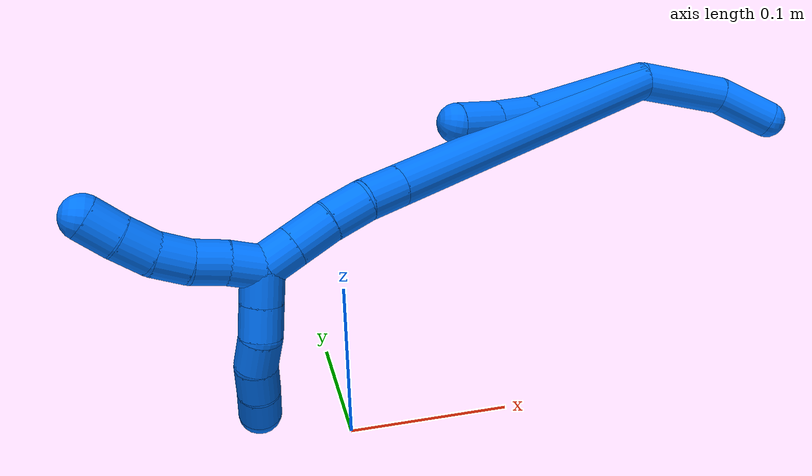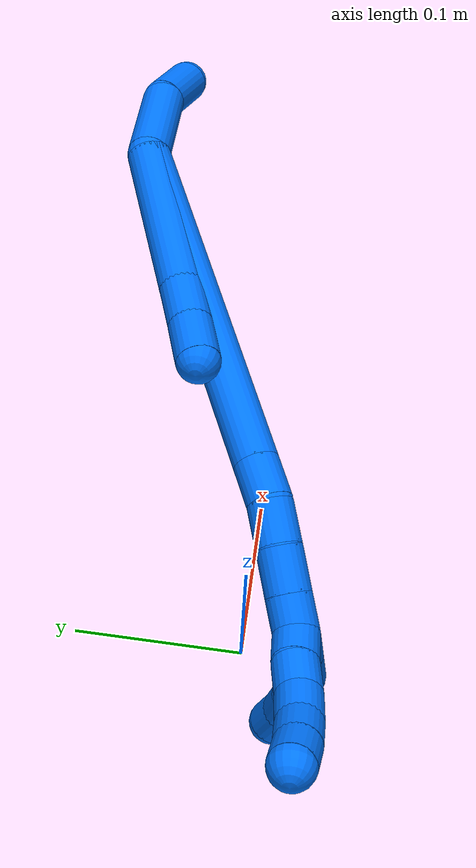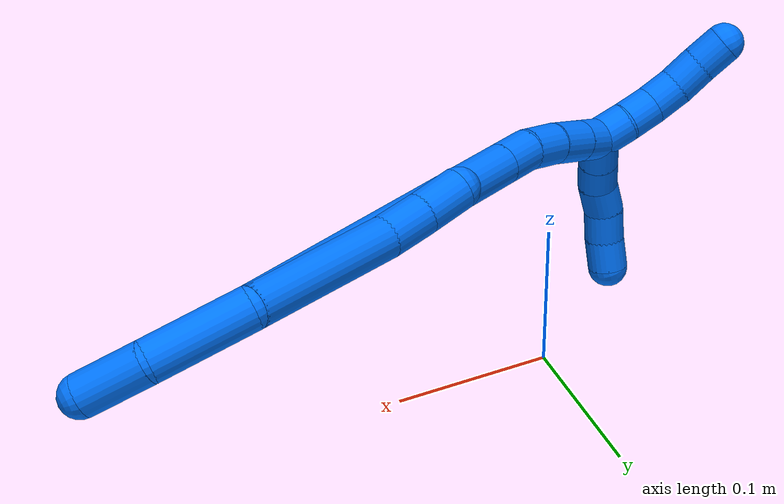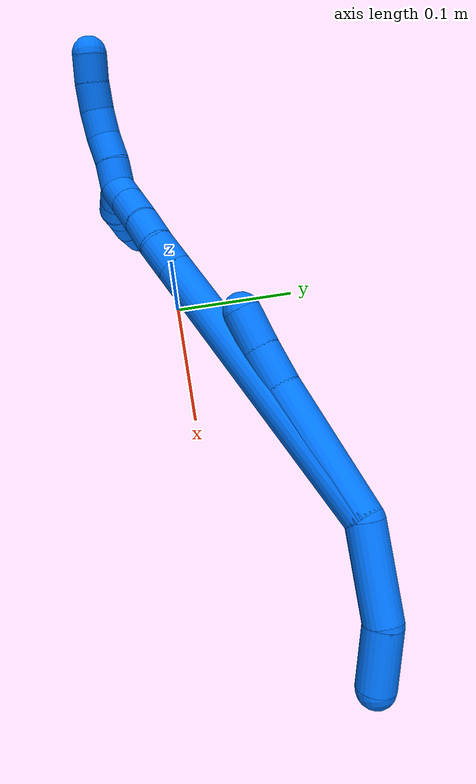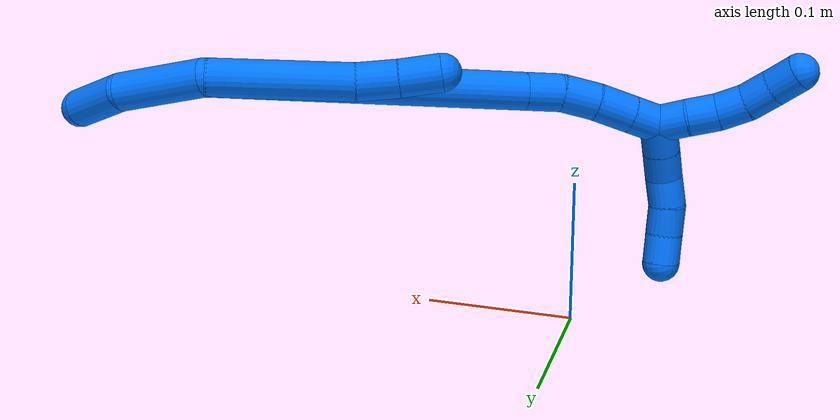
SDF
<sdf version="1.7">
 <world name="default">
  <model name="14">
   <static>0</static>
   <link name="14">
    <collision name="collision-cylinder-e_1_2_8">
     <pose>0.003915 -0.020545 -0.042519 2.69148 0.082711 0.357632</pose>
     <geometry><cylinder><radius>0.0125</radius><length>0.094769</length></cylinder></geometry>
     <surface>
      <friction><ode><mu>1.16</mu><mu2>1.16</mu2><slip1>0</slip1><slip2>0</slip2></ode></friction>
      <contact><ode><kp>1e+06</kp><kd>1</kd><max_vel>0</max_vel><min_depth>0.001</min_depth></ode></contact>
     </surface>
    </collision>
    <visual name="visual-cylinder-e_1_2_8">
     <pose>0.003915 -0.020545 -0.042519 2.69148 0.082711 0.357632</pose>
     <geometry><cylinder><radius>0.0125</radius><length>0.094769</length></cylinder></geometry>
     <material><ambient>0 0.462745 1 1</ambient></material>
    </visual>
    <collision name="collision-cylinder-e_2_8_9">
     <pose>0.007659 -0.045909 -0.097999 2.7856 -0.012362 -0.068691</pose>
     <geometry><cylinder><radius>0.0125</radius><length>0.027657</length></cylinder></geometry>
     <surface>
      <friction><ode><mu>1.16</mu><mu2>1.16</mu2><slip1>0</slip1><slip2>0</slip2></ode></friction>
      <contact><ode><kp>1e+06</kp><kd>1</kd><max_vel>0</max_vel><min_depth>0.001</min_depth></ode></contact>
     </surface>
    </collision>
    <visual name="visual-cylinder-e_2_8_9">
     <pose>0.007659 -0.045909 -0.097999 2.7856 -0.012362 -0.068691</pose>
     <geometry><cylinder><radius>0.0125</radius><length>0.027657</length></cylinder></geometry>
     <material><ambient>0 0.462745 1 1</ambient></material>
    </visual>
    <collision name="collision-cylinder-e_3_9_6">
     <pose>0.006722 -0.054777 -0.124116 2.84306 -0.055559 -0.365423</pose>
     <geometry><cylinder><radius>0.0125</radius><length>0.027574</length></cylinder></geometry>
     <surface>
      <friction><ode><mu>1.16</mu><mu2>1.16</mu2><slip1>0</slip1><slip2>0</slip2></ode></friction>
      <contact><ode><kp>1e+06</kp><kd>1</kd><max_vel>0</max_vel><min_depth>0.001</min_depth></ode></contact>
     </surface>
    </collision>
    <visual name="visual-cylinder-e_3_9_6">
     <pose>0.006722 -0.054777 -0.124116 2.84306 -0.055559 -0.365423</pose>
     <geometry><cylinder><radius>0.0125</radius><length>0.027574</length></cylinder></geometry>
     <material><ambient>0 0.462745 1 1</ambient></material>
    </visual>
    <collision name="collision-cylinder-e_1_2_10">
     <pose>0.00023 -0.000125 0.030267 0.004143 0.007603 1.6e-05</pose>
     <geometry><cylinder><radius>0.0125</radius><length>0.060537</length></cylinder></geometry>
     <surface>
      <friction><ode><mu>1.16</mu><mu2>1.16</mu2><slip1>0</slip1><slip2>0</slip2></ode></friction>
      <contact><ode><kp>1e+06</kp><kd>1</kd><max_vel>0</max_vel><min_depth>0.001</min_depth></ode></contact>
     </surface>
    </collision>
    <visual name="visual-cylinder-e_1_2_10">
     <pose>0.00023 -0.000125 0.030267 0.004143 0.007603 1.6e-05</pose>
     <geometry><cylinder><radius>0.0125</radius><length>0.060537</length></cylinder></geometry>
     <material><ambient>0 0.462745 1 1</ambient></material>
    </visual>
    <collision name="collision-cylinder-e_2_10_5">
     <pose>0.001834 -0.006477 0.079208 0.321831 0.069683 0.011315</pose>
     <geometry><cylinder><radius>0.0125</radius><length>0.039463</length></cylinder></geometry>
     <surface>
      <friction><ode><mu>1.16</mu><mu2>1.16</mu2><slip1>0</slip1><slip2>0</slip2></ode></friction>
      <contact><ode><kp>1e+06</kp><kd>1</kd><max_vel>0</max_vel><min_depth>0.001</min_depth></ode></contact>
     </surface>
    </collision>
    <visual name="visual-cylinder-e_2_10_5">
     <pose>0.001834 -0.006477 0.079208 0.321831 0.069683 0.011315</pose>
     <geometry><cylinder><radius>0.0125</radius><length>0.039463</length></cylinder></geometry>
     <material><ambient>0 0.462745 1 1</ambient></material>
    </visual>
    <collision name="collision-cylinder-e_1_2_11">
     <pose>0.007453 -0.053478 -0.08829 2.59699 0.07208 0.256823</pose>
     <geometry><cylinder><radius>0.0125</radius><length>0.206984</length></cylinder></geometry>
     <surface>
      <friction><ode><mu>1.16</mu><mu2>1.16</mu2><slip1>0</slip1><slip2>0</slip2></ode></friction>
      <contact><ode><kp>1e+06</kp><kd>1</kd><max_vel>0</max_vel><min_depth>0.001</min_depth></ode></contact>
     </surface>
    </collision>
    <visual name="visual-cylinder-e_1_2_11">
     <pose>0.007453 -0.053478 -0.08829 2.59699 0.07208 0.256823</pose>
     <geometry><cylinder><radius>0.0125</radius><length>0.206984</length></cylinder></geometry>
     <material><ambient>0 0.462745 1 1</ambient></material>
    </visual>
    <collision name="collision-cylinder-e_2_11_12">
     <pose>0.015764 -0.113116 -0.186778 2.59808 0.071866 0.256603</pose>
     <geometry><cylinder><radius>0.0125</radius><length>0.02389</length></cylinder></geometry>
     <surface>
      <friction><ode><mu>1.16</mu><mu2>1.16</mu2><slip1>0</slip1><slip2>0</slip2></ode></friction>
      <contact><ode><kp>1e+06</kp><kd>1</kd><max_vel>0</max_vel><min_depth>0.001</min_depth></ode></contact>
     </surface>
    </collision>
    <visual name="visual-cylinder-e_2_11_12">
     <pose>0.015764 -0.113116 -0.186778 2.59808 0.071866 0.256603</pose>
     <geometry><cylinder><radius>0.0125</radius><length>0.02389</length></cylinder></geometry>
     <material><ambient>0 0.462745 1 1</ambient></material>
    </visual>
    <collision name="collision-cylinder-e_3_12_13">
     <pose>0.019916 -0.125509 -0.206781 2.5755 0.276323 0.891882</pose>
     <geometry><cylinder><radius>0.0125</radius><length>0.024151</length></cylinder></geometry>
     <surface>
      <friction><ode><mu>1.16</mu><mu2>1.16</mu2><slip1>0</slip1><slip2>0</slip2></ode></friction>
      <contact><ode><kp>1e+06</kp><kd>1</kd><max_vel>0</max_vel><min_depth>0.001</min_depth></ode></contact>
     </surface>
    </collision>
    <visual name="visual-cylinder-e_3_12_13">
     <pose>0.019916 -0.125509 -0.206781 2.5755 0.276323 0.891882</pose>
     <geometry><cylinder><radius>0.0125</radius><length>0.024151</length></cylinder></geometry>
     <material><ambient>0 0.462745 1 1</ambient></material>
    </visual>
    <collision name="collision-cylinder-e_4_13_14">
     <pose>0.0275 -0.138673 -0.22603 2.50828 0.35093 0.991869</pose>
     <geometry><cylinder><radius>0.0125</radius><length>0.024952</length></cylinder></geometry>
     <surface>
      <friction><ode><mu>1.16</mu><mu2>1.16</mu2><slip1>0</slip1><slip2>0</slip2></ode></friction>
      <contact><ode><kp>1e+06</kp><kd>1</kd><max_vel>0</max_vel><min_depth>0.001</min_depth></ode></contact>
     </surface>
    </collision>
    <visual name="visual-cylinder-e_4_13_14">
     <pose>0.0275 -0.138673 -0.22603 2.50828 0.35093 0.991869</pose>
     <geometry><cylinder><radius>0.0125</radius><length>0.024952</length></cylinder></geometry>
     <material><ambient>0 0.462745 1 1</ambient></material>
    </visual>
    <collision name="collision-cylinder-e_5_14_1">
     <pose>0.03521 -0.151205 -0.243035 2.50428 0.348745 0.980928</pose>
     <geometry><cylinder><radius>0.0125</radius><length>0.020022</length></cylinder></geometry>
     <surface>
      <friction><ode><mu>1.16</mu><mu2>1.16</mu2><slip1>0</slip1><slip2>0</slip2></ode></friction>
      <contact><ode><kp>1e+06</kp><kd>1</kd><max_vel>0</max_vel><min_depth>0.001</min_depth></ode></contact>
     </surface>
    </collision>
    <visual name="visual-cylinder-e_5_14_1">
     <pose>0.03521 -0.151205 -0.243035 2.50428 0.348745 0.980928</pose>
     <geometry><cylinder><radius>0.0125</radius><length>0.020022</length></cylinder></geometry>
     <material><ambient>0 0.462745 1 1</ambient></material>
    </visual>
    <collision name="collision-cylinder-e_1_1_15">
     <pose>0.037871 -0.156978 -0.260566 3.1241 -0.076037 -2.68961</pose>
     <geometry><cylinder><radius>0.0125</radius><length>0.02</length></cylinder></geometry>
     <surface>
      <friction><ode><mu>1.16</mu><mu2>1.16</mu2><slip1>0</slip1><slip2>0</slip2></ode></friction>
      <contact><ode><kp>1e+06</kp><kd>1</kd><max_vel>0</max_vel><min_depth>0.001</min_depth></ode></contact>
     </surface>
    </collision>
    <visual name="visual-cylinder-e_1_1_15">
     <pose>0.037871 -0.156978 -0.260566 3.1241 -0.076037 -2.68961</pose>
     <geometry><cylinder><radius>0.0125</radius><length>0.02</length></cylinder></geometry>
     <material><ambient>0 0.462745 1 1</ambient></material>
    </visual>
    <collision name="collision-cylinder-e_2_15_16">
     <pose>0.036345 -0.15872 -0.280382 2.98376 -0.076689 -0.903318</pose>
     <geometry><cylinder><radius>0.0125</radius><length>0.02</length></cylinder></geometry>
     <surface>
      <friction><ode><mu>1.16</mu><mu2>1.16</mu2><slip1>0</slip1><slip2>0</slip2></ode></friction>
      <contact><ode><kp>1e+06</kp><kd>1</kd><max_vel>0</max_vel><min_depth>0.001</min_depth></ode></contact>
     </surface>
    </collision>
    <visual name="visual-cylinder-e_2_15_16">
     <pose>0.036345 -0.15872 -0.280382 2.98376 -0.076689 -0.903318</pose>
     <geometry><cylinder><radius>0.0125</radius><length>0.02</length></cylinder></geometry>
     <material><ambient>0 0.462745 1 1</ambient></material>
    </visual>
    <collision name="collision-cylinder-e_3_16_17">
     <pose>0.033738 -0.16017 -0.300057 -3.12972 -0.185199 3.01393</pose>
     <geometry><cylinder><radius>0.0125</radius><length>0.02</length></cylinder></geometry>
     <surface>
      <friction><ode><mu>1.16</mu><mu2>1.16</mu2><slip1>0</slip1><slip2>0</slip2></ode></friction>
      <contact><ode><kp>1e+06</kp><kd>1</kd><max_vel>0</max_vel><min_depth>0.001</min_depth></ode></contact>
     </surface>
    </collision>
    <visual name="visual-cylinder-e_3_16_17">
     <pose>0.033738 -0.16017 -0.300057 -3.12972 -0.185199 3.01393</pose>
     <geometry><cylinder><radius>0.0125</radius><length>0.02</length></cylinder></geometry>
     <material><ambient>0 0.462745 1 1</ambient></material>
    </visual>
    <collision name="collision-cylinder-e_4_17_18">
     <pose>0.028677 -0.1582 -0.31917 -2.94457 -0.327813 2.06436</pose>
     <geometry><cylinder><radius>0.0125</radius><length>0.02</length></cylinder></geometry>
     <surface>
      <friction><ode><mu>1.16</mu><mu2>1.16</mu2><slip1>0</slip1><slip2>0</slip2></ode></friction>
      <contact><ode><kp>1e+06</kp><kd>1</kd><max_vel>0</max_vel><min_depth>0.001</min_depth></ode></contact>
     </surface>
    </collision>
    <visual name="visual-cylinder-e_4_17_18">
     <pose>0.028677 -0.1582 -0.31917 -2.94457 -0.327813 2.06436</pose>
     <geometry><cylinder><radius>0.0125</radius><length>0.02</length></cylinder></geometry>
     <material><ambient>0 0.462745 1 1</ambient></material>
    </visual>
    <collision name="collision-cylinder-e_5_18_4">
     <pose>0.022428 -0.15353 -0.337559 -2.84153 -0.307737 1.59643</pose>
     <geometry><cylinder><radius>0.0125</radius><length>0.02</length></cylinder></geometry>
     <surface>
      <friction><ode><mu>1.16</mu><mu2>1.16</mu2><slip1>0</slip1><slip2>0</slip2></ode></friction>
      <contact><ode><kp>1e+06</kp><kd>1</kd><max_vel>0</max_vel><min_depth>0.001</min_depth></ode></contact>
     </surface>
    </collision>
    <visual name="visual-cylinder-e_5_18_4">
     <pose>0.022428 -0.15353 -0.337559 -2.84153 -0.307737 1.59643</pose>
     <geometry><cylinder><radius>0.0125</radius><length>0.02</length></cylinder></geometry>
     <material><ambient>0 0.462745 1 1</ambient></material>
    </visual>
    <collision name="collision-cylinder-e_1_1_19">
     <pose>0.046367 -0.163013 -0.249336 1.37053 0.884626 0.738727</pose>
     <geometry><cylinder><radius>0.0125</radius><length>0.02</length></cylinder></geometry>
     <surface>
      <friction><ode><mu>1.16</mu><mu2>1.16</mu2><slip1>0</slip1><slip2>0</slip2></ode></friction>
      <contact><ode><kp>1e+06</kp><kd>1</kd><max_vel>0</max_vel><min_depth>0.001</min_depth></ode></contact>
     </surface>
    </collision>
    <visual name="visual-cylinder-e_1_1_19">
     <pose>0.046367 -0.163013 -0.249336 1.37053 0.884626 0.738727</pose>
     <geometry><cylinder><radius>0.0125</radius><length>0.02</length></cylinder></geometry>
     <material><ambient>0 0.462745 1 1</ambient></material>
    </visual>
    <collision name="collision-cylinder-e_2_19_20">
     <pose>0.061839 -0.17542 -0.246749 1.35984 0.884324 0.731143</pose>
     <geometry><cylinder><radius>0.0125</radius><length>0.02</length></cylinder></geometry>
     <surface>
      <friction><ode><mu>1.16</mu><mu2>1.16</mu2><slip1>0</slip1><slip2>0</slip2></ode></friction>
      <contact><ode><kp>1e+06</kp><kd>1</kd><max_vel>0</max_vel><min_depth>0.001</min_depth></ode></contact>
     </surface>
    </collision>
    <visual name="visual-cylinder-e_2_19_20">
     <pose>0.061839 -0.17542 -0.246749 1.35984 0.884324 0.731143</pose>
     <geometry><cylinder><radius>0.0125</radius><length>0.02</length></cylinder></geometry>
     <material><ambient>0 0.462745 1 1</ambient></material>
    </visual>
    <collision name="collision-cylinder-e_3_20_21">
     <pose>0.078833 -0.185357 -0.244885 1.4284 1.18345 1.05502</pose>
     <geometry><cylinder><radius>0.0125</radius><length>0.02</length></cylinder></geometry>
     <surface>
      <friction><ode><mu>1.16</mu><mu2>1.16</mu2><slip1>0</slip1><slip2>0</slip2></ode></friction>
      <contact><ode><kp>1e+06</kp><kd>1</kd><max_vel>0</max_vel><min_depth>0.001</min_depth></ode></contact>
     </surface>
    </collision>
    <visual name="visual-cylinder-e_3_20_21">
     <pose>0.078833 -0.185357 -0.244885 1.4284 1.18345 1.05502</pose>
     <geometry><cylinder><radius>0.0125</radius><length>0.02</length></cylinder></geometry>
     <material><ambient>0 0.462745 1 1</ambient></material>
    </visual>
    <collision name="collision-cylinder-e_4_21_22">
     <pose>0.097241 -0.192085 -0.241634 0.833368 1.15514 0.561639</pose>
     <geometry><cylinder><radius>0.0125</radius><length>0.02</length></cylinder></geometry>
     <surface>
      <friction><ode><mu>1.16</mu><mu2>1.16</mu2><slip1>0</slip1><slip2>0</slip2></ode></friction>
      <contact><ode><kp>1e+06</kp><kd>1</kd><max_vel>0</max_vel><min_depth>0.001</min_depth></ode></contact>
     </surface>
    </collision>
    <visual name="visual-cylinder-e_4_21_22">
     <pose>0.097241 -0.192085 -0.241634 0.833368 1.15514 0.561639</pose>
     <geometry><cylinder><radius>0.0125</radius><length>0.02</length></cylinder></geometry>
     <material><ambient>0 0.462745 1 1</ambient></material>
    </visual>
    <collision name="collision-cylinder-e_5_22_3">
     <pose>0.115952 -0.19675 -0.236523 0.610398 1.27397 0.458002</pose>
     <geometry><cylinder><radius>0.0125</radius><length>0.02</length></cylinder></geometry>
     <surface>
      <friction><ode><mu>1.16</mu><mu2>1.16</mu2><slip1>0</slip1><slip2>0</slip2></ode></friction>
      <contact><ode><kp>1e+06</kp><kd>1</kd><max_vel>0</max_vel><min_depth>0.001</min_depth></ode></contact>
     </surface>
    </collision>
    <visual name="visual-cylinder-e_5_22_3">
     <pose>0.115952 -0.19675 -0.236523 0.610398 1.27397 0.458002</pose>
     <geometry><cylinder><radius>0.0125</radius><length>0.02</length></cylinder></geometry>
     <material><ambient>0 0.462745 1 1</ambient></material>
    </visual>
    <collision name="collision-sphere-3">
     <pose>0.125515 -0.198427 -0.234126 0 -0 0</pose>
     <geometry><sphere><radius>0.0125</radius></sphere></geometry>
     <surface>
      <friction><ode><mu>1.16</mu><mu2>1.16</mu2><slip1>0</slip1><slip2>0</slip2></ode></friction>
      <contact><ode><kp>1e+06</kp><kd>1</kd><max_vel>0</max_vel><min_depth>0.001</min_depth></ode></contact>
     </surface>
    </collision>
    <visual name="visual-sphere-3">
     <pose>0.125515 -0.198427 -0.234126 0 -0 0</pose>
     <geometry><sphere><radius>0.0125</radius></sphere></geometry>
     <material><ambient>0 0.462745 1 1</ambient></material>
    </visual>
    <collision name="collision-sphere-22">
     <pose>0.106389 -0.195074 -0.238919 0 -0 0</pose>
     <geometry><sphere><radius>0.0125</radius></sphere></geometry>
     <surface>
      <friction><ode><mu>1.16</mu><mu2>1.16</mu2><slip1>0</slip1><slip2>0</slip2></ode></friction>
      <contact><ode><kp>1e+06</kp><kd>1</kd><max_vel>0</max_vel><min_depth>0.001</min_depth></ode></contact>
     </surface>
    </collision>
    <visual name="visual-sphere-22">
     <pose>0.106389 -0.195074 -0.238919 0 -0 0</pose>
     <geometry><sphere><radius>0.0125</radius></sphere></geometry>
     <material><ambient>0 0.462745 1 1</ambient></material>
    </visual>
    <collision name="collision-sphere-21">
     <pose>0.088092 -0.189096 -0.244349 0 -0 0</pose>
     <geometry><sphere><radius>0.0125</radius></sphere></geometry>
     <surface>
      <friction><ode><mu>1.16</mu><mu2>1.16</mu2><slip1>0</slip1><slip2>0</slip2></ode></friction>
      <contact><ode><kp>1e+06</kp><kd>1</kd><max_vel>0</max_vel><min_depth>0.001</min_depth></ode></contact>
     </surface>
    </collision>
    <visual name="visual-sphere-21">
     <pose>0.088092 -0.189096 -0.244349 0 -0 0</pose>
     <geometry><sphere><radius>0.0125</radius></sphere></geometry>
     <material><ambient>0 0.462745 1 1</ambient></material>
    </visual>
    <collision name="collision-sphere-20">
     <pose>0.069574 -0.181617 -0.245422 0 -0 0</pose>
     <geometry><sphere><radius>0.0125</radius></sphere></geometry>
     <surface>
      <friction><ode><mu>1.16</mu><mu2>1.16</mu2><slip1>0</slip1><slip2>0</slip2></ode></friction>
      <contact><ode><kp>1e+06</kp><kd>1</kd><max_vel>0</max_vel><min_depth>0.001</min_depth></ode></contact>
     </surface>
    </collision>
    <visual name="visual-sphere-20">
     <pose>0.069574 -0.181617 -0.245422 0 -0 0</pose>
     <geometry><sphere><radius>0.0125</radius></sphere></geometry>
     <material><ambient>0 0.462745 1 1</ambient></material>
    </visual>
    <collision name="collision-sphere-19">
     <pose>0.054104 -0.169222 -0.248076 0 -0 0</pose>
     <geometry><sphere><radius>0.0125</radius></sphere></geometry>
     <surface>
      <friction><ode><mu>1.16</mu><mu2>1.16</mu2><slip1>0</slip1><slip2>0</slip2></ode></friction>
      <contact><ode><kp>1e+06</kp><kd>1</kd><max_vel>0</max_vel><min_depth>0.001</min_depth></ode></contact>
     </surface>
    </collision>
    <visual name="visual-sphere-19">
     <pose>0.054104 -0.169222 -0.248076 0 -0 0</pose>
     <geometry><sphere><radius>0.0125</radius></sphere></geometry>
     <material><ambient>0 0.462745 1 1</ambient></material>
    </visual>
    <collision name="collision-sphere-5">
     <pose>0.003208 -0.012703 0.097881 0 -0 0</pose>
     <geometry><sphere><radius>0.0125</radius></sphere></geometry>
     <surface>
      <friction><ode><mu>1.16</mu><mu2>1.16</mu2><slip1>0</slip1><slip2>0</slip2></ode></friction>
      <contact><ode><kp>1e+06</kp><kd>1</kd><max_vel>0</max_vel><min_depth>0.001</min_depth></ode></contact>
     </surface>
    </collision>
    <visual name="visual-sphere-5">
     <pose>0.003208 -0.012703 0.097881 0 -0 0</pose>
     <geometry><sphere><radius>0.0125</radius></sphere></geometry>
     <material><ambient>0 0.462745 1 1</ambient></material>
    </visual>
    <collision name="collision-sphere-10">
     <pose>0.00046 -0.000251 0.060535 0 -0 0</pose>
     <geometry><sphere><radius>0.0125</radius></sphere></geometry>
     <surface>
      <friction><ode><mu>1.16</mu><mu2>1.16</mu2><slip1>0</slip1><slip2>0</slip2></ode></friction>
      <contact><ode><kp>1e+06</kp><kd>1</kd><max_vel>0</max_vel><min_depth>0.001</min_depth></ode></contact>
     </surface>
    </collision>
    <visual name="visual-sphere-10">
     <pose>0.00046 -0.000251 0.060535 0 -0 0</pose>
     <geometry><sphere><radius>0.0125</radius></sphere></geometry>
     <material><ambient>0 0.462745 1 1</ambient></material>
    </visual>
    <collision name="collision-sphere-6">
     <pose>0.005956 -0.058825 -0.137273 0 -0 0</pose>
     <geometry><sphere><radius>0.0125</radius></sphere></geometry>
     <surface>
      <friction><ode><mu>1.16</mu><mu2>1.16</mu2><slip1>0</slip1><slip2>0</slip2></ode></friction>
      <contact><ode><kp>1e+06</kp><kd>1</kd><max_vel>0</max_vel><min_depth>0.001</min_depth></ode></contact>
     </surface>
    </collision>
    <visual name="visual-sphere-6">
     <pose>0.005956 -0.058825 -0.137273 0 -0 0</pose>
     <geometry><sphere><radius>0.0125</radius></sphere></geometry>
     <material><ambient>0 0.462745 1 1</ambient></material>
    </visual>
    <collision name="collision-sphere-9">
     <pose>0.007488 -0.050728 -0.110959 0 -0 0</pose>
     <geometry><sphere><radius>0.0125</radius></sphere></geometry>
     <surface>
      <friction><ode><mu>1.16</mu><mu2>1.16</mu2><slip1>0</slip1><slip2>0</slip2></ode></friction>
      <contact><ode><kp>1e+06</kp><kd>1</kd><max_vel>0</max_vel><min_depth>0.001</min_depth></ode></contact>
     </surface>
    </collision>
    <visual name="visual-sphere-9">
     <pose>0.007488 -0.050728 -0.110959 0 -0 0</pose>
     <geometry><sphere><radius>0.0125</radius></sphere></geometry>
     <material><ambient>0 0.462745 1 1</ambient></material>
    </visual>
    <collision name="collision-sphere-2">
     <geometry><sphere><radius>0.0125</radius></sphere></geometry>
     <surface>
      <friction><ode><mu>1.16</mu><mu2>1.16</mu2><slip1>0</slip1><slip2>0</slip2></ode></friction>
      <contact><ode><kp>1e+06</kp><kd>1</kd><max_vel>0</max_vel><min_depth>0.001</min_depth></ode></contact>
     </surface>
    </collision>
    <visual name="visual-sphere-2">
     <geometry><sphere><radius>0.0125</radius></sphere></geometry>
     <material><ambient>0 0.462745 1 1</ambient></material>
    </visual>
    <collision name="collision-sphere-8">
     <pose>0.007829 -0.04109 -0.085038 0 -0 0</pose>
     <geometry><sphere><radius>0.0125</radius></sphere></geometry>
     <surface>
      <friction><ode><mu>1.16</mu><mu2>1.16</mu2><slip1>0</slip1><slip2>0</slip2></ode></friction>
      <contact><ode><kp>1e+06</kp><kd>1</kd><max_vel>0</max_vel><min_depth>0.001</min_depth></ode></contact>
     </surface>
    </collision>
    <visual name="visual-sphere-8">
     <pose>0.007829 -0.04109 -0.085038 0 -0 0</pose>
     <geometry><sphere><radius>0.0125</radius></sphere></geometry>
     <material><ambient>0 0.462745 1 1</ambient></material>
    </visual>
    <collision name="collision-sphere-11">
     <pose>0.014906 -0.106955 -0.176581 0 -0 0</pose>
     <geometry><sphere><radius>0.0125</radius></sphere></geometry>
     <surface>
      <friction><ode><mu>1.16</mu><mu2>1.16</mu2><slip1>0</slip1><slip2>0</slip2></ode></friction>
      <contact><ode><kp>1e+06</kp><kd>1</kd><max_vel>0</max_vel><min_depth>0.001</min_depth></ode></contact>
     </surface>
    </collision>
    <visual name="visual-sphere-11">
     <pose>0.014906 -0.106955 -0.176581 0 -0 0</pose>
     <geometry><sphere><radius>0.0125</radius></sphere></geometry>
     <material><ambient>0 0.462745 1 1</ambient></material>
    </visual>
    <collision name="collision-sphere-12">
     <pose>0.016622 -0.119278 -0.196975 0 -0 0</pose>
     <geometry><sphere><radius>0.0125</radius></sphere></geometry>
     <surface>
      <friction><ode><mu>1.16</mu><mu2>1.16</mu2><slip1>0</slip1><slip2>0</slip2></ode></friction>
      <contact><ode><kp>1e+06</kp><kd>1</kd><max_vel>0</max_vel><min_depth>0.001</min_depth></ode></contact>
     </surface>
    </collision>
    <visual name="visual-sphere-12">
     <pose>0.016622 -0.119278 -0.196975 0 -0 0</pose>
     <geometry><sphere><radius>0.0125</radius></sphere></geometry>
     <material><ambient>0 0.462745 1 1</ambient></material>
    </visual>
    <collision name="collision-sphere-13">
     <pose>0.023211 -0.13174 -0.216586 0 -0 0</pose>
     <geometry><sphere><radius>0.0125</radius></sphere></geometry>
     <surface>
      <friction><ode><mu>1.16</mu><mu2>1.16</mu2><slip1>0</slip1><slip2>0</slip2></ode></friction>
      <contact><ode><kp>1e+06</kp><kd>1</kd><max_vel>0</max_vel><min_depth>0.001</min_depth></ode></contact>
     </surface>
    </collision>
    <visual name="visual-sphere-13">
     <pose>0.023211 -0.13174 -0.216586 0 -0 0</pose>
     <geometry><sphere><radius>0.0125</radius></sphere></geometry>
     <material><ambient>0 0.462745 1 1</ambient></material>
    </visual>
    <collision name="collision-sphere-14">
     <pose>0.031789 -0.145607 -0.235473 0 -0 0</pose>
     <geometry><sphere><radius>0.0125</radius></sphere></geometry>
     <surface>
      <friction><ode><mu>1.16</mu><mu2>1.16</mu2><slip1>0</slip1><slip2>0</slip2></ode></friction>
      <contact><ode><kp>1e+06</kp><kd>1</kd><max_vel>0</max_vel><min_depth>0.001</min_depth></ode></contact>
     </surface>
    </collision>
    <visual name="visual-sphere-14">
     <pose>0.031789 -0.145607 -0.235473 0 -0 0</pose>
     <geometry><sphere><radius>0.0125</radius></sphere></geometry>
     <material><ambient>0 0.462745 1 1</ambient></material>
    </visual>
    <collision name="collision-sphere-1">
     <pose>0.038631 -0.156804 -0.250597 0 -0 0</pose>
     <geometry><sphere><radius>0.0125</radius></sphere></geometry>
     <surface>
      <friction><ode><mu>1.16</mu><mu2>1.16</mu2><slip1>0</slip1><slip2>0</slip2></ode></friction>
      <contact><ode><kp>1e+06</kp><kd>1</kd><max_vel>0</max_vel><min_depth>0.001</min_depth></ode></contact>
     </surface>
    </collision>
    <visual name="visual-sphere-1">
     <pose>0.038631 -0.156804 -0.250597 0 -0 0</pose>
     <geometry><sphere><radius>0.0125</radius></sphere></geometry>
     <material><ambient>0 0.462745 1 1</ambient></material>
    </visual>
    <collision name="collision-sphere-18">
     <pose>0.025457 -0.156347 -0.328454 0 -0 0</pose>
     <geometry><sphere><radius>0.0125</radius></sphere></geometry>
     <surface>
      <friction><ode><mu>1.16</mu><mu2>1.16</mu2><slip1>0</slip1><slip2>0</slip2></ode></friction>
      <contact><ode><kp>1e+06</kp><kd>1</kd><max_vel>0</max_vel><min_depth>0.001</min_depth></ode></contact>
     </surface>
    </collision>
    <visual name="visual-sphere-18">
     <pose>0.025457 -0.156347 -0.328454 0 -0 0</pose>
     <geometry><sphere><radius>0.0125</radius></sphere></geometry>
     <material><ambient>0 0.462745 1 1</ambient></material>
    </visual>
    <collision name="collision-sphere-15">
     <pose>0.037111 -0.157153 -0.270536 0 -0 0</pose>
     <geometry><sphere><radius>0.0125</radius></sphere></geometry>
     <surface>
      <friction><ode><mu>1.16</mu><mu2>1.16</mu2><slip1>0</slip1><slip2>0</slip2></ode></friction>
      <contact><ode><kp>1e+06</kp><kd>1</kd><max_vel>0</max_vel><min_depth>0.001</min_depth></ode></contact>
     </surface>
    </collision>
    <visual name="visual-sphere-15">
     <pose>0.037111 -0.157153 -0.270536 0 -0 0</pose>
     <geometry><sphere><radius>0.0125</radius></sphere></geometry>
     <material><ambient>0 0.462745 1 1</ambient></material>
    </visual>
    <collision name="collision-sphere-16">
     <pose>0.035579 -0.160287 -0.290229 0 -0 0</pose>
     <geometry><sphere><radius>0.0125</radius></sphere></geometry>
     <surface>
      <friction><ode><mu>1.16</mu><mu2>1.16</mu2><slip1>0</slip1><slip2>0</slip2></ode></friction>
      <contact><ode><kp>1e+06</kp><kd>1</kd><max_vel>0</max_vel><min_depth>0.001</min_depth></ode></contact>
     </surface>
    </collision>
    <visual name="visual-sphere-16">
     <pose>0.035579 -0.160287 -0.290229 0 -0 0</pose>
     <geometry><sphere><radius>0.0125</radius></sphere></geometry>
     <material><ambient>0 0.462745 1 1</ambient></material>
    </visual>
    <collision name="collision-sphere-17">
     <pose>0.031896 -0.160054 -0.309886 0 -0 0</pose>
     <geometry><sphere><radius>0.0125</radius></sphere></geometry>
     <surface>
      <friction><ode><mu>1.16</mu><mu2>1.16</mu2><slip1>0</slip1><slip2>0</slip2></ode></friction>
      <contact><ode><kp>1e+06</kp><kd>1</kd><max_vel>0</max_vel><min_depth>0.001</min_depth></ode></contact>
     </surface>
    </collision>
    <visual name="visual-sphere-17">
     <pose>0.031896 -0.160054 -0.309886 0 -0 0</pose>
     <geometry><sphere><radius>0.0125</radius></sphere></geometry>
     <material><ambient>0 0.462745 1 1</ambient></material>
    </visual>
    <collision name="collision-sphere-4">
     <pose>0.019399 -0.150713 -0.346663 0 -0 0</pose>
     <geometry><sphere><radius>0.0125</radius></sphere></geometry>
     <surface>
      <friction><ode><mu>1.16</mu><mu2>1.16</mu2><slip1>0</slip1><slip2>0</slip2></ode></friction>
      <contact><ode><kp>1e+06</kp><kd>1</kd><max_vel>0</max_vel><min_depth>0.001</min_depth></ode></contact>
     </surface>
    </collision>
    <visual name="visual-sphere-4">
     <pose>0.019399 -0.150713 -0.346663 0 -0 0</pose>
     <geometry><sphere><radius>0.0125</radius></sphere></geometry>
     <material><ambient>0 0.462745 1 1</ambient></material>
    </visual>
    <inertial>
     <pose>0.021109 -0.083047 -0.130371 0 -0 0</pose>
     <mass>0.75</mass>
     <inertia>
      <ixx>0.00106</ixx>
      <ixy>0</ixy>
      <ixz>0</ixz>
      <iyy>-0.000444</iyy>
      <iyz>0</iyz>
      <izz>0.000333</izz>
     </inertia>
    </inertial>
   </link>
   <pose>0.220998 0.088063 0.182312 2.04128 0.993521 1.98316</pose>
  </model>
 </world>
</sdf>
